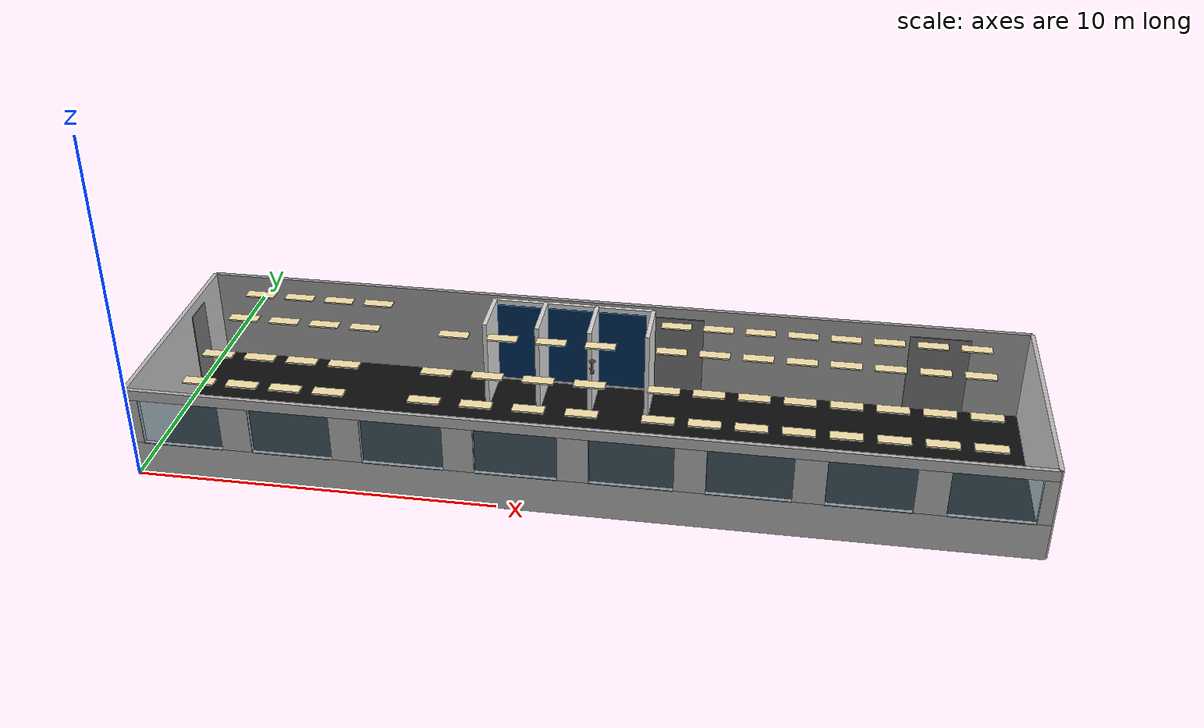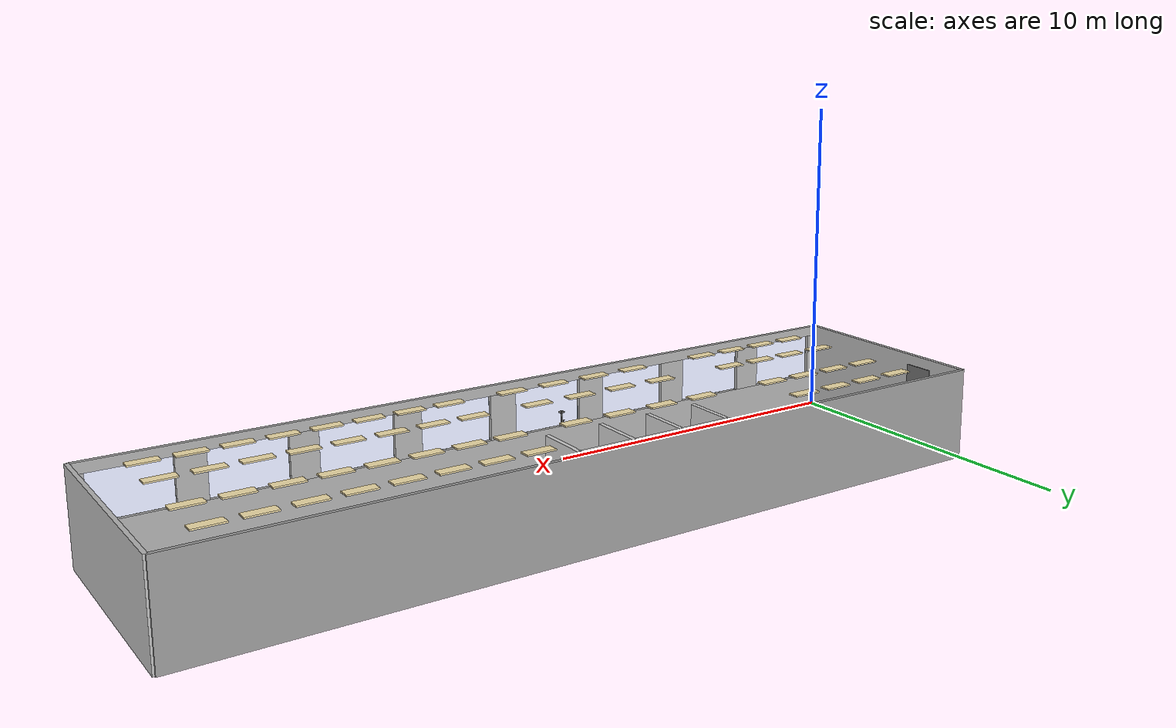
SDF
<?xml version="1.0" ?>
<sdf version="1.10">
  <world name="room_427_tracking_test">

    <plugin filename="gz-sim-physics-system" name="gz::sim::systems::Physics"/>
    <plugin filename="gz-sim-user-commands-system" name="gz::sim::systems::UserCommands"/>
    <plugin filename="gz-sim-scene-broadcaster-system" name="gz::sim::systems::SceneBroadcaster"/>
    <plugin filename="gz-sim-sensors-system" name="gz::sim::systems::Sensors">
      <render_engine>ogre2</render_engine>
    </plugin>

    <gravity>0 0 -9.8</gravity>

    <scene>
      <ambient>0.68 0.68 0.68 1</ambient>
      <background>0.82 0.86 0.9 1</background>
      <shadows>true</shadows>
      <grid>false</grid>
    </scene>

    <light name="main_light" type="directional">
      <pose>0 0 10 0 0 0</pose>
      <diffuse>1.0 1.0 0.95 1</diffuse>
      <specular>0.35 0.35 0.32 1</specular>
      <direction>-0.5 0.5 -1</direction>
    </light>

    <light name="room_427_fill_light_1" type="point">
      <pose>4.0 1.5 2.55 0 0 0</pose>
      <diffuse>0.85 0.82 0.72 1</diffuse>
      <specular>0.12 0.12 0.1 1</specular>
      <attenuation>
        <range>8.5</range>
        <constant>0.6</constant>
        <linear>0.08</linear>
        <quadratic>0.02</quadratic>
      </attenuation>
      <cast_shadows>false</cast_shadows>
    </light>

    <light name="room_427_fill_light_2" type="point">
      <pose>10.5 4.0 2.55 0 0 0</pose>
      <diffuse>0.85 0.82 0.72 1</diffuse>
      <specular>0.12 0.12 0.1 1</specular>
      <attenuation>
        <range>8.5</range>
        <constant>0.6</constant>
        <linear>0.08</linear>
        <quadratic>0.02</quadratic>
      </attenuation>
      <cast_shadows>false</cast_shadows>
    </light>

    <light name="room_427_fill_light_3" type="point">
      <pose>17.0 1.5 2.55 0 0 0</pose>
      <diffuse>0.85 0.82 0.72 1</diffuse>
      <specular>0.12 0.12 0.1 1</specular>
      <attenuation>
        <range>8.5</range>
        <constant>0.6</constant>
        <linear>0.08</linear>
        <quadratic>0.02</quadratic>
      </attenuation>
      <cast_shadows>false</cast_shadows>
    </light>

    <light name="room_427_fill_light_4" type="point">
      <pose>21.5 4.0 2.55 0 0 0</pose>
      <diffuse>0.85 0.82 0.72 1</diffuse>
      <specular>0.12 0.12 0.1 1</specular>
      <attenuation>
        <range>8.5</range>
        <constant>0.6</constant>
        <linear>0.08</linear>
        <quadratic>0.02</quadratic>
      </attenuation>
      <cast_shadows>false</cast_shadows>
    </light>

    <gui fullscreen="0">
      <camera name="user_camera">
        <pose>12 -10 8 0 0.7 1.15</pose>
      </camera>
    </gui>

    <!-- Floor: black, reflective -->
    <model name="room_427_floor">
      <static>true</static>
      <pose>12.1 3.27 0 0 0 0</pose>
      <link name="floor_link">
        <collision name="floor_collision">
          <geometry><box><size>24.2 6.54 0.03</size></box></geometry>
        </collision>
        <visual name="floor_visual">
          <geometry><box><size>24.2 6.54 0.03</size></box></geometry>
          <material>
            <ambient>0.01 0.01 0.01 1</ambient>
            <diffuse>0.055 0.055 0.052 1</diffuse>
            <specular>0.45 0.45 0.42 1</specular>
            <pbr>
              <metal>
                <metalness>0.0</metalness>
                <roughness>0.28</roughness>
              </metal>
            </pbr>
          </material>
        </visual>
      </link>
    </model>

    <model name="back_wall_D_C">
      <static>true</static>
      <pose>12.1 6.54 1.375 0 0 0</pose>
      <link name="link">
        <collision name="collision">
          <geometry><box><size>24.2 0.12 2.75</size></box></geometry>
        </collision>
        <visual name="visual">
          <geometry><box><size>24.2 0.12 2.75</size></box></geometry>
          <material>
            <ambient>0.62 0.62 0.62 1</ambient>
            <diffuse>0.62 0.62 0.62 1</diffuse>

          </material>

        </visual>
      </link>
    </model>

    <model name="wall_A_C_solid_no_door">
      <static>true</static>
      <pose>24.2 3.27 1.375 0 0 0</pose>
      <link name="link">
        <collision name="collision">
          <geometry><box><size>0.12 6.54 2.75</size></box></geometry>
        </collision>
        <visual name="visual">
          <geometry><box><size>0.12 6.54 2.75</size></box></geometry>
          <material>
            <ambient>0.75 0.75 0.75 1</ambient>
            <diffuse>0.75 0.75 0.75 1</diffuse>

          </material>

        </visual>
      </link>
    </model>
    <!-- B-D wall: solid wall; Door 3 is shown as a gray door panel near D -->
    <model name="B_D_wall_solid_with_door3_panel">
      <static>true</static>
      <pose>0 3.27 1.375 0 0 0</pose>
      <link name="wall_B_D_solid">
        <collision name="collision">
          <geometry><box><size>0.12 6.54 2.75</size></box></geometry>
        </collision>
        <visual name="visual">
          <geometry><box><size>0.12 6.54 2.75</size></box></geometry>
          <material>
            <ambient>0.75 0.75 0.75 1</ambient>
            <diffuse>0.75 0.75 0.75 1</diffuse>
          </material>
        </visual>
      </link>
      <link name="door_3_panel_near_D">
        <pose>0.065 1.5682 -0.16 0 0 0</pose>
        <visual name="visual">
          <geometry><box><size>0.04 0.9144 2.43</size></box></geometry>
          <material>
            <ambient>0.45 0.45 0.45 1</ambient>
            <diffuse>0.45 0.45 0.45 1</diffuse>
          </material>
        </visual>
      </link>
    </model>

    <model name="window_wall_lower_A_B">
      <static>true</static>
      <pose>12.1 0 0.545 0 0 0</pose>
      <link name="link">
        <collision name="collision">
          <geometry><box><size>24.2 0.12 1.09</size></box></geometry>
        </collision>
        <visual name="visual">
          <geometry><box><size>24.2 0.12 1.09</size></box></geometry>
          <material>
            <ambient>0.7 0.7 0.7 1</ambient>
            <diffuse>0.7 0.7 0.7 1</diffuse>

          </material>

        </visual>
      </link>
    </model>

    <model name="window_wall_top_A_B">
      <static>true</static>
      <pose>12.1 0 2.5925 0 0 0</pose>
      <link name="link">
        <collision name="collision">
          <geometry><box><size>24.2 0.12 0.305</size></box></geometry>
        </collision>
        <visual name="visual">
          <geometry><box><size>24.2 0.12 0.305</size></box></geometry>
          <material>
            <ambient>0.7 0.7 0.7 1</ambient>
            <diffuse>0.7 0.7 0.7 1</diffuse>

          </material>

        </visual>
      </link>
    </model>

    <model name="window_wall_vertical_pieces">
      <static>true</static>

      <link name="window_side_left">
        <pose>0.1725 0 1.765 0 0 0</pose>
        <collision name="collision">
          <geometry><box><size>0.345 0.12 1.35</size></box></geometry>
        </collision>
        <visual name="visual">
          <geometry><box><size>0.345 0.12 1.35</size></box></geometry>
          <material>
            <ambient>0.7 0.7 0.7 1</ambient>
            <diffuse>0.7 0.7 0.7 1</diffuse>

          </material>

        </visual>
      </link>

      <link name="window_gap_1">
        <pose>2.97 0 1.765 0 0 0</pose>
        <collision name="collision">
          <geometry><box><size>0.83 0.12 1.35</size></box></geometry>
        </collision>
        <visual name="visual">
          <geometry><box><size>0.83 0.12 1.35</size></box></geometry>
          <material>
            <ambient>0.7 0.7 0.7 1</ambient>
            <diffuse>0.7 0.7 0.7 1</diffuse>

          </material>

        </visual>
      </link>

      <link name="window_gap_2">
        <pose>6.01 0 1.765 0 0 0</pose>
        <collision name="collision">
          <geometry><box><size>0.83 0.12 1.35</size></box></geometry>
        </collision>
        <visual name="visual">
          <geometry><box><size>0.83 0.12 1.35</size></box></geometry>
          <material>
            <ambient>0.7 0.7 0.7 1</ambient>
            <diffuse>0.7 0.7 0.7 1</diffuse>

          </material>

        </visual>
      </link>

      <link name="window_gap_3">
        <pose>9.05 0 1.765 0 0 0</pose>
        <collision name="collision">
          <geometry><box><size>0.83 0.12 1.35</size></box></geometry>
        </collision>
        <visual name="visual">
          <geometry><box><size>0.83 0.12 1.35</size></box></geometry>
          <material>
            <ambient>0.7 0.7 0.7 1</ambient>
            <diffuse>0.7 0.7 0.7 1</diffuse>

          </material>

        </visual>
      </link>

      <link name="window_gap_4">
        <pose>12.09 0 1.765 0 0 0</pose>
        <collision name="collision">
          <geometry><box><size>0.83 0.12 1.35</size></box></geometry>
        </collision>
        <visual name="visual">
          <geometry><box><size>0.83 0.12 1.35</size></box></geometry>
          <material>
            <ambient>0.7 0.7 0.7 1</ambient>
            <diffuse>0.7 0.7 0.7 1</diffuse>

          </material>

        </visual>
      </link>

      <link name="window_gap_5">
        <pose>15.13 0 1.765 0 0 0</pose>
        <collision name="collision">
          <geometry><box><size>0.83 0.12 1.35</size></box></geometry>
        </collision>
        <visual name="visual">
          <geometry><box><size>0.83 0.12 1.35</size></box></geometry>
          <material>
            <ambient>0.7 0.7 0.7 1</ambient>
            <diffuse>0.7 0.7 0.7 1</diffuse>

          </material>

        </visual>
      </link>

      <link name="window_gap_6">
        <pose>18.17 0 1.765 0 0 0</pose>
        <collision name="collision">
          <geometry><box><size>0.83 0.12 1.35</size></box></geometry>
        </collision>
        <visual name="visual">
          <geometry><box><size>0.83 0.12 1.35</size></box></geometry>
          <material>
            <ambient>0.7 0.7 0.7 1</ambient>
            <diffuse>0.7 0.7 0.7 1</diffuse>

          </material>

        </visual>
      </link>

      <link name="window_gap_7">
        <pose>21.21 0 1.765 0 0 0</pose>
        <collision name="collision">
          <geometry><box><size>0.83 0.12 1.35</size></box></geometry>
        </collision>
        <visual name="visual">
          <geometry><box><size>0.83 0.12 1.35</size></box></geometry>
          <material>
            <ambient>0.7 0.7 0.7 1</ambient>
            <diffuse>0.7 0.7 0.7 1</diffuse>

          </material>

        </visual>
      </link>

      <link name="window_side_right">
        <pose>24.0175 0 1.765 0 0 0</pose>
        <collision name="collision">
          <geometry><box><size>0.365 0.12 1.35</size></box></geometry>
        </collision>
        <visual name="visual">
          <geometry><box><size>0.365 0.12 1.35</size></box></geometry>
          <material>
            <ambient>0.7 0.7 0.7 1</ambient>
            <diffuse>0.7 0.7 0.7 1</diffuse>

          </material>

        </visual>
      </link>
    </model>

    <model name="window_glass_panes">
      <static>true</static>

      <link name="window_1">
        <pose>1.45 -0.07 1.765 0 0 0</pose>
        <visual name="visual">
          <geometry><box><size>2.21 0.03 1.35</size></box></geometry>
          <material>
            <ambient>0.55 0.75 0.9 0.35</ambient>
            <diffuse>0.55 0.75 0.9 0.35</diffuse>
            <specular>0.8 0.8 0.8 1</specular>

          </material>
          <transparency>0.55</transparency>
        </visual>
      </link>

      <link name="window_2">
        <pose>4.49 -0.07 1.765 0 0 0</pose>
        <visual name="visual">
          <geometry><box><size>2.21 0.03 1.35</size></box></geometry>
          <material>
            <ambient>0.55 0.75 0.9 0.35</ambient>
            <diffuse>0.55 0.75 0.9 0.35</diffuse>
            <specular>0.8 0.8 0.8 1</specular>

          </material>
          <transparency>0.55</transparency>
        </visual>
      </link>

      <link name="window_3">
        <pose>7.53 -0.07 1.765 0 0 0</pose>
        <visual name="visual">
          <geometry><box><size>2.21 0.03 1.35</size></box></geometry>
          <material>
            <ambient>0.55 0.75 0.9 0.35</ambient>
            <diffuse>0.55 0.75 0.9 0.35</diffuse>
            <specular>0.8 0.8 0.8 1</specular>

          </material>
          <transparency>0.55</transparency>
        </visual>
      </link>

      <link name="window_4">
        <pose>10.57 -0.07 1.765 0 0 0</pose>
        <visual name="visual">
          <geometry><box><size>2.21 0.03 1.35</size></box></geometry>
          <material>
            <ambient>0.55 0.75 0.9 0.35</ambient>
            <diffuse>0.55 0.75 0.9 0.35</diffuse>
            <specular>0.8 0.8 0.8 1</specular>

          </material>
          <transparency>0.55</transparency>
        </visual>
      </link>

      <link name="window_5">
        <pose>13.61 -0.07 1.765 0 0 0</pose>
        <visual name="visual">
          <geometry><box><size>2.21 0.03 1.35</size></box></geometry>
          <material>
            <ambient>0.55 0.75 0.9 0.35</ambient>
            <diffuse>0.55 0.75 0.9 0.35</diffuse>
            <specular>0.8 0.8 0.8 1</specular>

          </material>
          <transparency>0.55</transparency>
        </visual>
      </link>

      <link name="window_6">
        <pose>16.65 -0.07 1.765 0 0 0</pose>
        <visual name="visual">
          <geometry><box><size>2.21 0.03 1.35</size></box></geometry>
          <material>
            <ambient>0.55 0.75 0.9 0.35</ambient>
            <diffuse>0.55 0.75 0.9 0.35</diffuse>
            <specular>0.8 0.8 0.8 1</specular>

          </material>
          <transparency>0.55</transparency>
        </visual>
      </link>

      <link name="window_7">
        <pose>19.69 -0.07 1.765 0 0 0</pose>
        <visual name="visual">
          <geometry><box><size>2.21 0.03 1.35</size></box></geometry>
          <material>
            <ambient>0.55 0.75 0.9 0.35</ambient>
            <diffuse>0.55 0.75 0.9 0.35</diffuse>
            <specular>0.8 0.8 0.8 1</specular>

          </material>
          <transparency>0.55</transparency>
        </visual>
      </link>

      <link name="window_8">
        <pose>22.73 -0.07 1.765 0 0 0</pose>
        <visual name="visual">
          <geometry><box><size>2.21 0.03 1.35</size></box></geometry>
          <material>
            <ambient>0.55 0.75 0.9 0.35</ambient>
            <diffuse>0.55 0.75 0.9 0.35</diffuse>
            <specular>0.8 0.8 0.8 1</specular>

          </material>
          <transparency>0.55</transparency>
        </visual>
      </link>
    </model>

    <model name="ceiling_lights_zone1">
      <static>true</static>

      <link name="ceiling_lights_zone1_r1_c1">
        <pose>1.8 0.75 2.70 0 0 0</pose>
        <visual name="visual">
          <geometry><box><size>0.85 0.32 0.04</size></box></geometry>
          <material>
            <ambient>1.0 0.92 0.7 1</ambient>
            <diffuse>1.0 0.92 0.7 1</diffuse>

            <emissive>1.0 0.92 0.7 1</emissive>

          </material>

        </visual>
      </link>

      <link name="ceiling_lights_zone1_r1_c2">
        <pose>1.8 2.15 2.70 0 0 0</pose>
        <visual name="visual">
          <geometry><box><size>0.85 0.32 0.04</size></box></geometry>
          <material>
            <ambient>1.0 0.92 0.7 1</ambient>
            <diffuse>1.0 0.92 0.7 1</diffuse>

            <emissive>1.0 0.92 0.7 1</emissive>

          </material>

        </visual>
      </link>

      <link name="ceiling_lights_zone1_r1_c3">
        <pose>1.8 4.15 2.70 0 0 0</pose>
        <visual name="visual">
          <geometry><box><size>0.85 0.32 0.04</size></box></geometry>
          <material>
            <ambient>1.0 0.92 0.7 1</ambient>
            <diffuse>1.0 0.92 0.7 1</diffuse>

            <emissive>1.0 0.92 0.7 1</emissive>

          </material>

        </visual>
      </link>

      <link name="ceiling_lights_zone1_r1_c4">
        <pose>1.8 5.55 2.70 0 0 0</pose>
        <visual name="visual">
          <geometry><box><size>0.85 0.32 0.04</size></box></geometry>
          <material>
            <ambient>1.0 0.92 0.7 1</ambient>
            <diffuse>1.0 0.92 0.7 1</diffuse>

            <emissive>1.0 0.92 0.7 1</emissive>

          </material>

        </visual>
      </link>

      <link name="ceiling_lights_zone1_r2_c1">
        <pose>3.0 0.75 2.70 0 0 0</pose>
        <visual name="visual">
          <geometry><box><size>0.85 0.32 0.04</size></box></geometry>
          <material>
            <ambient>1.0 0.92 0.7 1</ambient>
            <diffuse>1.0 0.92 0.7 1</diffuse>

            <emissive>1.0 0.92 0.7 1</emissive>

          </material>

        </visual>
      </link>

      <link name="ceiling_lights_zone1_r2_c2">
        <pose>3.0 2.15 2.70 0 0 0</pose>
        <visual name="visual">
          <geometry><box><size>0.85 0.32 0.04</size></box></geometry>
          <material>
            <ambient>1.0 0.92 0.7 1</ambient>
            <diffuse>1.0 0.92 0.7 1</diffuse>

            <emissive>1.0 0.92 0.7 1</emissive>

          </material>

        </visual>
      </link>

      <link name="ceiling_lights_zone1_r2_c3">
        <pose>3.0 4.15 2.70 0 0 0</pose>
        <visual name="visual">
          <geometry><box><size>0.85 0.32 0.04</size></box></geometry>
          <material>
            <ambient>1.0 0.92 0.7 1</ambient>
            <diffuse>1.0 0.92 0.7 1</diffuse>

            <emissive>1.0 0.92 0.7 1</emissive>

          </material>

        </visual>
      </link>

      <link name="ceiling_lights_zone1_r2_c4">
        <pose>3.0 5.55 2.70 0 0 0</pose>
        <visual name="visual">
          <geometry><box><size>0.85 0.32 0.04</size></box></geometry>
          <material>
            <ambient>1.0 0.92 0.7 1</ambient>
            <diffuse>1.0 0.92 0.7 1</diffuse>

            <emissive>1.0 0.92 0.7 1</emissive>

          </material>

        </visual>
      </link>

      <link name="ceiling_lights_zone1_r3_c1">
        <pose>4.2 0.75 2.70 0 0 0</pose>
        <visual name="visual">
          <geometry><box><size>0.85 0.32 0.04</size></box></geometry>
          <material>
            <ambient>1.0 0.92 0.7 1</ambient>
            <diffuse>1.0 0.92 0.7 1</diffuse>

            <emissive>1.0 0.92 0.7 1</emissive>

          </material>

        </visual>
      </link>

      <link name="ceiling_lights_zone1_r3_c2">
        <pose>4.2 2.15 2.70 0 0 0</pose>
        <visual name="visual">
          <geometry><box><size>0.85 0.32 0.04</size></box></geometry>
          <material>
            <ambient>1.0 0.92 0.7 1</ambient>
            <diffuse>1.0 0.92 0.7 1</diffuse>

            <emissive>1.0 0.92 0.7 1</emissive>

          </material>

        </visual>
      </link>

      <link name="ceiling_lights_zone1_r3_c3">
        <pose>4.2 4.15 2.70 0 0 0</pose>
        <visual name="visual">
          <geometry><box><size>0.85 0.32 0.04</size></box></geometry>
          <material>
            <ambient>1.0 0.92 0.7 1</ambient>
            <diffuse>1.0 0.92 0.7 1</diffuse>

            <emissive>1.0 0.92 0.7 1</emissive>

          </material>

        </visual>
      </link>

      <link name="ceiling_lights_zone1_r3_c4">
        <pose>4.2 5.55 2.70 0 0 0</pose>
        <visual name="visual">
          <geometry><box><size>0.85 0.32 0.04</size></box></geometry>
          <material>
            <ambient>1.0 0.92 0.7 1</ambient>
            <diffuse>1.0 0.92 0.7 1</diffuse>

            <emissive>1.0 0.92 0.7 1</emissive>

          </material>

        </visual>
      </link>

      <link name="ceiling_lights_zone1_r4_c1">
        <pose>5.4 0.75 2.70 0 0 0</pose>
        <visual name="visual">
          <geometry><box><size>0.85 0.32 0.04</size></box></geometry>
          <material>
            <ambient>1.0 0.92 0.7 1</ambient>
            <diffuse>1.0 0.92 0.7 1</diffuse>

            <emissive>1.0 0.92 0.7 1</emissive>

          </material>

        </visual>
      </link>

      <link name="ceiling_lights_zone1_r4_c2">
        <pose>5.4 2.15 2.70 0 0 0</pose>
        <visual name="visual">
          <geometry><box><size>0.85 0.32 0.04</size></box></geometry>
          <material>
            <ambient>1.0 0.92 0.7 1</ambient>
            <diffuse>1.0 0.92 0.7 1</diffuse>

            <emissive>1.0 0.92 0.7 1</emissive>

          </material>

        </visual>
      </link>

      <link name="ceiling_lights_zone1_r4_c3">
        <pose>5.4 4.15 2.70 0 0 0</pose>
        <visual name="visual">
          <geometry><box><size>0.85 0.32 0.04</size></box></geometry>
          <material>
            <ambient>1.0 0.92 0.7 1</ambient>
            <diffuse>1.0 0.92 0.7 1</diffuse>

            <emissive>1.0 0.92 0.7 1</emissive>

          </material>

        </visual>
      </link>

      <link name="ceiling_lights_zone1_r4_c4">
        <pose>5.4 5.55 2.70 0 0 0</pose>
        <visual name="visual">
          <geometry><box><size>0.85 0.32 0.04</size></box></geometry>
          <material>
            <ambient>1.0 0.92 0.7 1</ambient>
            <diffuse>1.0 0.92 0.7 1</diffuse>

            <emissive>1.0 0.92 0.7 1</emissive>

          </material>

        </visual>
      </link>
    </model>

    <model name="ceiling_lights_zone2">
      <static>true</static>

      <link name="ceiling_lights_zone2_r1_c1">
        <pose>8.0 0.75 2.70 0 0 0</pose>
        <visual name="visual">
          <geometry><box><size>0.85 0.32 0.04</size></box></geometry>
          <material>
            <ambient>1.0 0.92 0.7 1</ambient>
            <diffuse>1.0 0.92 0.7 1</diffuse>

            <emissive>1.0 0.92 0.7 1</emissive>

          </material>

        </visual>
      </link>

      <link name="ceiling_lights_zone2_r1_c2">
        <pose>8.0 2.15 2.70 0 0 0</pose>
        <visual name="visual">
          <geometry><box><size>0.85 0.32 0.04</size></box></geometry>
          <material>
            <ambient>1.0 0.92 0.7 1</ambient>
            <diffuse>1.0 0.92 0.7 1</diffuse>

            <emissive>1.0 0.92 0.7 1</emissive>

          </material>

        </visual>
      </link>

      <link name="ceiling_lights_zone2_r1_c3">
        <pose>8.0 4.15 2.70 0 0 0</pose>
        <visual name="visual">
          <geometry><box><size>0.85 0.32 0.04</size></box></geometry>
          <material>
            <ambient>1.0 0.92 0.7 1</ambient>
            <diffuse>1.0 0.92 0.7 1</diffuse>

            <emissive>1.0 0.92 0.7 1</emissive>

          </material>

        </visual>
      </link>

      <link name="ceiling_lights_zone2_r2_c1">
        <pose>9.4 0.75 2.70 0 0 0</pose>
        <visual name="visual">
          <geometry><box><size>0.85 0.32 0.04</size></box></geometry>
          <material>
            <ambient>1.0 0.92 0.7 1</ambient>
            <diffuse>1.0 0.92 0.7 1</diffuse>

            <emissive>1.0 0.92 0.7 1</emissive>

          </material>

        </visual>
      </link>

      <link name="ceiling_lights_zone2_r2_c2">
        <pose>9.4 2.15 2.70 0 0 0</pose>
        <visual name="visual">
          <geometry><box><size>0.85 0.32 0.04</size></box></geometry>
          <material>
            <ambient>1.0 0.92 0.7 1</ambient>
            <diffuse>1.0 0.92 0.7 1</diffuse>

            <emissive>1.0 0.92 0.7 1</emissive>

          </material>

        </visual>
      </link>

      <link name="ceiling_lights_zone2_r2_c3">
        <pose>9.4 4.15 2.70 0 0 0</pose>
        <visual name="visual">
          <geometry><box><size>0.85 0.32 0.04</size></box></geometry>
          <material>
            <ambient>1.0 0.92 0.7 1</ambient>
            <diffuse>1.0 0.92 0.7 1</diffuse>

            <emissive>1.0 0.92 0.7 1</emissive>

          </material>

        </visual>
      </link>

      <link name="ceiling_lights_zone2_r3_c1">
        <pose>10.8 0.75 2.70 0 0 0</pose>
        <visual name="visual">
          <geometry><box><size>0.85 0.32 0.04</size></box></geometry>
          <material>
            <ambient>1.0 0.92 0.7 1</ambient>
            <diffuse>1.0 0.92 0.7 1</diffuse>

            <emissive>1.0 0.92 0.7 1</emissive>

          </material>

        </visual>
      </link>

      <link name="ceiling_lights_zone2_r3_c2">
        <pose>10.8 2.15 2.70 0 0 0</pose>
        <visual name="visual">
          <geometry><box><size>0.85 0.32 0.04</size></box></geometry>
          <material>
            <ambient>1.0 0.92 0.7 1</ambient>
            <diffuse>1.0 0.92 0.7 1</diffuse>

            <emissive>1.0 0.92 0.7 1</emissive>

          </material>

        </visual>
      </link>

      <link name="ceiling_lights_zone2_r3_c3">
        <pose>10.8 4.15 2.70 0 0 0</pose>
        <visual name="visual">
          <geometry><box><size>0.85 0.32 0.04</size></box></geometry>
          <material>
            <ambient>1.0 0.92 0.7 1</ambient>
            <diffuse>1.0 0.92 0.7 1</diffuse>

            <emissive>1.0 0.92 0.7 1</emissive>

          </material>

        </visual>
      </link>

      <link name="ceiling_lights_zone2_r4_c1">
        <pose>12.2 0.75 2.70 0 0 0</pose>
        <visual name="visual">
          <geometry><box><size>0.85 0.32 0.04</size></box></geometry>
          <material>
            <ambient>1.0 0.92 0.7 1</ambient>
            <diffuse>1.0 0.92 0.7 1</diffuse>

            <emissive>1.0 0.92 0.7 1</emissive>

          </material>

        </visual>
      </link>

      <link name="ceiling_lights_zone2_r4_c2">
        <pose>12.2 2.15 2.70 0 0 0</pose>
        <visual name="visual">
          <geometry><box><size>0.85 0.32 0.04</size></box></geometry>
          <material>
            <ambient>1.0 0.92 0.7 1</ambient>
            <diffuse>1.0 0.92 0.7 1</diffuse>

            <emissive>1.0 0.92 0.7 1</emissive>

          </material>

        </visual>
      </link>

      <link name="ceiling_lights_zone2_r4_c3">
        <pose>12.2 4.15 2.70 0 0 0</pose>
        <visual name="visual">
          <geometry><box><size>0.85 0.32 0.04</size></box></geometry>
          <material>
            <ambient>1.0 0.92 0.7 1</ambient>
            <diffuse>1.0 0.92 0.7 1</diffuse>

            <emissive>1.0 0.92 0.7 1</emissive>

          </material>

        </visual>
      </link>
    </model>

    <model name="ceiling_lights_zone3">
      <static>true</static>

      <link name="ceiling_lights_zone3_r1_c1">
        <pose>14.2 0.75 2.70 0 0 0</pose>
        <visual name="visual">
          <geometry><box><size>0.85 0.32 0.04</size></box></geometry>
          <material>
            <ambient>1.0 0.92 0.7 1</ambient>
            <diffuse>1.0 0.92 0.7 1</diffuse>

            <emissive>1.0 0.92 0.7 1</emissive>

          </material>

        </visual>
      </link>

      <link name="ceiling_lights_zone3_r1_c2">
        <pose>14.2 2.15 2.70 0 0 0</pose>
        <visual name="visual">
          <geometry><box><size>0.85 0.32 0.04</size></box></geometry>
          <material>
            <ambient>1.0 0.92 0.7 1</ambient>
            <diffuse>1.0 0.92 0.7 1</diffuse>

            <emissive>1.0 0.92 0.7 1</emissive>

          </material>

        </visual>
      </link>

      <link name="ceiling_lights_zone3_r1_c3">
        <pose>14.2 4.15 2.70 0 0 0</pose>
        <visual name="visual">
          <geometry><box><size>0.85 0.32 0.04</size></box></geometry>
          <material>
            <ambient>1.0 0.92 0.7 1</ambient>
            <diffuse>1.0 0.92 0.7 1</diffuse>

            <emissive>1.0 0.92 0.7 1</emissive>

          </material>

        </visual>
      </link>

      <link name="ceiling_lights_zone3_r1_c4">
        <pose>14.2 5.55 2.70 0 0 0</pose>
        <visual name="visual">
          <geometry><box><size>0.85 0.32 0.04</size></box></geometry>
          <material>
            <ambient>1.0 0.92 0.7 1</ambient>
            <diffuse>1.0 0.92 0.7 1</diffuse>

            <emissive>1.0 0.92 0.7 1</emissive>

          </material>

        </visual>
      </link>

      <link name="ceiling_lights_zone3_r2_c1">
        <pose>15.4 0.75 2.70 0 0 0</pose>
        <visual name="visual">
          <geometry><box><size>0.85 0.32 0.04</size></box></geometry>
          <material>
            <ambient>1.0 0.92 0.7 1</ambient>
            <diffuse>1.0 0.92 0.7 1</diffuse>

            <emissive>1.0 0.92 0.7 1</emissive>

          </material>

        </visual>
      </link>

      <link name="ceiling_lights_zone3_r2_c2">
        <pose>15.4 2.15 2.70 0 0 0</pose>
        <visual name="visual">
          <geometry><box><size>0.85 0.32 0.04</size></box></geometry>
          <material>
            <ambient>1.0 0.92 0.7 1</ambient>
            <diffuse>1.0 0.92 0.7 1</diffuse>

            <emissive>1.0 0.92 0.7 1</emissive>

          </material>

        </visual>
      </link>

      <link name="ceiling_lights_zone3_r2_c3">
        <pose>15.4 4.15 2.70 0 0 0</pose>
        <visual name="visual">
          <geometry><box><size>0.85 0.32 0.04</size></box></geometry>
          <material>
            <ambient>1.0 0.92 0.7 1</ambient>
            <diffuse>1.0 0.92 0.7 1</diffuse>

            <emissive>1.0 0.92 0.7 1</emissive>

          </material>

        </visual>
      </link>

      <link name="ceiling_lights_zone3_r2_c4">
        <pose>15.4 5.55 2.70 0 0 0</pose>
        <visual name="visual">
          <geometry><box><size>0.85 0.32 0.04</size></box></geometry>
          <material>
            <ambient>1.0 0.92 0.7 1</ambient>
            <diffuse>1.0 0.92 0.7 1</diffuse>

            <emissive>1.0 0.92 0.7 1</emissive>

          </material>

        </visual>
      </link>

      <link name="ceiling_lights_zone3_r3_c1">
        <pose>16.6 0.75 2.70 0 0 0</pose>
        <visual name="visual">
          <geometry><box><size>0.85 0.32 0.04</size></box></geometry>
          <material>
            <ambient>1.0 0.92 0.7 1</ambient>
            <diffuse>1.0 0.92 0.7 1</diffuse>

            <emissive>1.0 0.92 0.7 1</emissive>

          </material>

        </visual>
      </link>

      <link name="ceiling_lights_zone3_r3_c2">
        <pose>16.6 2.15 2.70 0 0 0</pose>
        <visual name="visual">
          <geometry><box><size>0.85 0.32 0.04</size></box></geometry>
          <material>
            <ambient>1.0 0.92 0.7 1</ambient>
            <diffuse>1.0 0.92 0.7 1</diffuse>

            <emissive>1.0 0.92 0.7 1</emissive>

          </material>

        </visual>
      </link>

      <link name="ceiling_lights_zone3_r3_c3">
        <pose>16.6 4.15 2.70 0 0 0</pose>
        <visual name="visual">
          <geometry><box><size>0.85 0.32 0.04</size></box></geometry>
          <material>
            <ambient>1.0 0.92 0.7 1</ambient>
            <diffuse>1.0 0.92 0.7 1</diffuse>

            <emissive>1.0 0.92 0.7 1</emissive>

          </material>

        </visual>
      </link>

      <link name="ceiling_lights_zone3_r3_c4">
        <pose>16.6 5.55 2.70 0 0 0</pose>
        <visual name="visual">
          <geometry><box><size>0.85 0.32 0.04</size></box></geometry>
          <material>
            <ambient>1.0 0.92 0.7 1</ambient>
            <diffuse>1.0 0.92 0.7 1</diffuse>

            <emissive>1.0 0.92 0.7 1</emissive>

          </material>

        </visual>
      </link>

      <link name="ceiling_lights_zone3_r4_c1">
        <pose>17.8 0.75 2.70 0 0 0</pose>
        <visual name="visual">
          <geometry><box><size>0.85 0.32 0.04</size></box></geometry>
          <material>
            <ambient>1.0 0.92 0.7 1</ambient>
            <diffuse>1.0 0.92 0.7 1</diffuse>

            <emissive>1.0 0.92 0.7 1</emissive>

          </material>

        </visual>
      </link>

      <link name="ceiling_lights_zone3_r4_c2">
        <pose>17.8 2.15 2.70 0 0 0</pose>
        <visual name="visual">
          <geometry><box><size>0.85 0.32 0.04</size></box></geometry>
          <material>
            <ambient>1.0 0.92 0.7 1</ambient>
            <diffuse>1.0 0.92 0.7 1</diffuse>

            <emissive>1.0 0.92 0.7 1</emissive>

          </material>

        </visual>
      </link>

      <link name="ceiling_lights_zone3_r4_c3">
        <pose>17.8 4.15 2.70 0 0 0</pose>
        <visual name="visual">
          <geometry><box><size>0.85 0.32 0.04</size></box></geometry>
          <material>
            <ambient>1.0 0.92 0.7 1</ambient>
            <diffuse>1.0 0.92 0.7 1</diffuse>

            <emissive>1.0 0.92 0.7 1</emissive>

          </material>

        </visual>
      </link>

      <link name="ceiling_lights_zone3_r4_c4">
        <pose>17.8 5.55 2.70 0 0 0</pose>
        <visual name="visual">
          <geometry><box><size>0.85 0.32 0.04</size></box></geometry>
          <material>
            <ambient>1.0 0.92 0.7 1</ambient>
            <diffuse>1.0 0.92 0.7 1</diffuse>

            <emissive>1.0 0.92 0.7 1</emissive>

          </material>

        </visual>
      </link>

      <link name="ceiling_lights_zone3_r5_c1">
        <pose>19.0 0.75 2.70 0 0 0</pose>
        <visual name="visual">
          <geometry><box><size>0.85 0.32 0.04</size></box></geometry>
          <material>
            <ambient>1.0 0.92 0.7 1</ambient>
            <diffuse>1.0 0.92 0.7 1</diffuse>

            <emissive>1.0 0.92 0.7 1</emissive>

          </material>

        </visual>
      </link>

      <link name="ceiling_lights_zone3_r5_c2">
        <pose>19.0 2.15 2.70 0 0 0</pose>
        <visual name="visual">
          <geometry><box><size>0.85 0.32 0.04</size></box></geometry>
          <material>
            <ambient>1.0 0.92 0.7 1</ambient>
            <diffuse>1.0 0.92 0.7 1</diffuse>

            <emissive>1.0 0.92 0.7 1</emissive>

          </material>

        </visual>
      </link>

      <link name="ceiling_lights_zone3_r5_c3">
        <pose>19.0 4.15 2.70 0 0 0</pose>
        <visual name="visual">
          <geometry><box><size>0.85 0.32 0.04</size></box></geometry>
          <material>
            <ambient>1.0 0.92 0.7 1</ambient>
            <diffuse>1.0 0.92 0.7 1</diffuse>

            <emissive>1.0 0.92 0.7 1</emissive>

          </material>

        </visual>
      </link>

      <link name="ceiling_lights_zone3_r5_c4">
        <pose>19.0 5.55 2.70 0 0 0</pose>
        <visual name="visual">
          <geometry><box><size>0.85 0.32 0.04</size></box></geometry>
          <material>
            <ambient>1.0 0.92 0.7 1</ambient>
            <diffuse>1.0 0.92 0.7 1</diffuse>

            <emissive>1.0 0.92 0.7 1</emissive>

          </material>

        </visual>
      </link>

      <link name="ceiling_lights_zone3_r6_c1">
        <pose>20.2 0.75 2.70 0 0 0</pose>
        <visual name="visual">
          <geometry><box><size>0.85 0.32 0.04</size></box></geometry>
          <material>
            <ambient>1.0 0.92 0.7 1</ambient>
            <diffuse>1.0 0.92 0.7 1</diffuse>

            <emissive>1.0 0.92 0.7 1</emissive>

          </material>

        </visual>
      </link>

      <link name="ceiling_lights_zone3_r6_c2">
        <pose>20.2 2.15 2.70 0 0 0</pose>
        <visual name="visual">
          <geometry><box><size>0.85 0.32 0.04</size></box></geometry>
          <material>
            <ambient>1.0 0.92 0.7 1</ambient>
            <diffuse>1.0 0.92 0.7 1</diffuse>

            <emissive>1.0 0.92 0.7 1</emissive>

          </material>

        </visual>
      </link>

      <link name="ceiling_lights_zone3_r6_c3">
        <pose>20.2 4.15 2.70 0 0 0</pose>
        <visual name="visual">
          <geometry><box><size>0.85 0.32 0.04</size></box></geometry>
          <material>
            <ambient>1.0 0.92 0.7 1</ambient>
            <diffuse>1.0 0.92 0.7 1</diffuse>

            <emissive>1.0 0.92 0.7 1</emissive>

          </material>

        </visual>
      </link>

      <link name="ceiling_lights_zone3_r6_c4">
        <pose>20.2 5.55 2.70 0 0 0</pose>
        <visual name="visual">
          <geometry><box><size>0.85 0.32 0.04</size></box></geometry>
          <material>
            <ambient>1.0 0.92 0.7 1</ambient>
            <diffuse>1.0 0.92 0.7 1</diffuse>

            <emissive>1.0 0.92 0.7 1</emissive>

          </material>

        </visual>
      </link>

      <link name="ceiling_lights_zone3_r7_c1">
        <pose>21.4 0.75 2.70 0 0 0</pose>
        <visual name="visual">
          <geometry><box><size>0.85 0.32 0.04</size></box></geometry>
          <material>
            <ambient>1.0 0.92 0.7 1</ambient>
            <diffuse>1.0 0.92 0.7 1</diffuse>

            <emissive>1.0 0.92 0.7 1</emissive>

          </material>

        </visual>
      </link>

      <link name="ceiling_lights_zone3_r7_c2">
        <pose>21.4 2.15 2.70 0 0 0</pose>
        <visual name="visual">
          <geometry><box><size>0.85 0.32 0.04</size></box></geometry>
          <material>
            <ambient>1.0 0.92 0.7 1</ambient>
            <diffuse>1.0 0.92 0.7 1</diffuse>

            <emissive>1.0 0.92 0.7 1</emissive>

          </material>

        </visual>
      </link>

      <link name="ceiling_lights_zone3_r7_c3">
        <pose>21.4 4.15 2.70 0 0 0</pose>
        <visual name="visual">
          <geometry><box><size>0.85 0.32 0.04</size></box></geometry>
          <material>
            <ambient>1.0 0.92 0.7 1</ambient>
            <diffuse>1.0 0.92 0.7 1</diffuse>

            <emissive>1.0 0.92 0.7 1</emissive>

          </material>

        </visual>
      </link>

      <link name="ceiling_lights_zone3_r7_c4">
        <pose>21.4 5.55 2.70 0 0 0</pose>
        <visual name="visual">
          <geometry><box><size>0.85 0.32 0.04</size></box></geometry>
          <material>
            <ambient>1.0 0.92 0.7 1</ambient>
            <diffuse>1.0 0.92 0.7 1</diffuse>

            <emissive>1.0 0.92 0.7 1</emissive>

          </material>

        </visual>
      </link>

      <link name="ceiling_lights_zone3_r8_c1">
        <pose>22.6 0.75 2.70 0 0 0</pose>
        <visual name="visual">
          <geometry><box><size>0.85 0.32 0.04</size></box></geometry>
          <material>
            <ambient>1.0 0.92 0.7 1</ambient>
            <diffuse>1.0 0.92 0.7 1</diffuse>

            <emissive>1.0 0.92 0.7 1</emissive>

          </material>

        </visual>
      </link>

      <link name="ceiling_lights_zone3_r8_c2">
        <pose>22.6 2.15 2.70 0 0 0</pose>
        <visual name="visual">
          <geometry><box><size>0.85 0.32 0.04</size></box></geometry>
          <material>
            <ambient>1.0 0.92 0.7 1</ambient>
            <diffuse>1.0 0.92 0.7 1</diffuse>

            <emissive>1.0 0.92 0.7 1</emissive>

          </material>

        </visual>
      </link>

      <link name="ceiling_lights_zone3_r8_c3">
        <pose>22.6 4.15 2.70 0 0 0</pose>
        <visual name="visual">
          <geometry><box><size>0.85 0.32 0.04</size></box></geometry>
          <material>
            <ambient>1.0 0.92 0.7 1</ambient>
            <diffuse>1.0 0.92 0.7 1</diffuse>

            <emissive>1.0 0.92 0.7 1</emissive>

          </material>

        </visual>
      </link>

      <link name="ceiling_lights_zone3_r8_c4">
        <pose>22.6 5.55 2.70 0 0 0</pose>
        <visual name="visual">
          <geometry><box><size>0.85 0.32 0.04</size></box></geometry>
          <material>
            <ambient>1.0 0.92 0.7 1</ambient>
            <diffuse>1.0 0.92 0.7 1</diffuse>

            <emissive>1.0 0.92 0.7 1</emissive>

          </material>

        </visual>
      </link>
    </model>

    <model name="doors_and_connected_boxes_on_D_C_wall">
      <static>true</static>

      <link name="door_1_panel_D_C_wall">
        <pose>21.7 6.47 1.215 0 0 0</pose>
        <visual name="visual">
          <geometry><box><size>1.72 0.04 2.43</size></box></geometry>
          <material>
            <ambient>0.45 0.45 0.45 1</ambient>
            <diffuse>0.45 0.45 0.45 1</diffuse>

          </material>

        </visual>
      </link>

      <link name="door_2_panel_D_C_wall">
        <pose>14.0 6.47 1.215 0 0 0</pose>
        <visual name="visual">
          <geometry><box><size>1.83 0.04 2.43</size></box></geometry>
          <material>
            <ambient>0.45 0.45 0.45 1</ambient>
            <diffuse>0.45 0.45 0.45 1</diffuse>

          </material>

        </visual>
      </link>

      <link name="boxes_back_wall">
        <pose>11.1 6.27 1.375 0 0 0</pose>
        <collision name="collision">
          <geometry><box><size>4.699 0.12 2.75</size></box></geometry>
        </collision>
        <visual name="visual">
          <geometry><box><size>4.699 0.12 2.75</size></box></geometry>
          <material>
            <ambient>0.85 0.85 0.85 1</ambient>
            <diffuse>0.85 0.85 0.85 1</diffuse>

          </material>

        </visual>
      </link>

      <link name="boxes_left_side">
        <pose>8.75 5.50 1.375 0 0 0</pose>
        <collision name="collision">
          <geometry><box><size>0.127 1.549 2.75</size></box></geometry>
        </collision>
        <visual name="visual">
          <geometry><box><size>0.127 1.549 2.75</size></box></geometry>
          <material>
            <ambient>0.85 0.85 0.85 1</ambient>
            <diffuse>0.85 0.85 0.85 1</diffuse>

          </material>

        </visual>
      </link>

      <link name="boxes_divider_1">
        <pose>10.27 5.50 1.375 0 0 0</pose>
        <collision name="collision">
          <geometry><box><size>0.127 1.549 2.75</size></box></geometry>
        </collision>
        <visual name="visual">
          <geometry><box><size>0.127 1.549 2.75</size></box></geometry>
          <material>
            <ambient>0.85 0.85 0.85 1</ambient>
            <diffuse>0.85 0.85 0.85 1</diffuse>

          </material>

        </visual>
      </link>

      <link name="boxes_divider_2">
        <pose>11.79 5.50 1.375 0 0 0</pose>
        <collision name="collision">
          <geometry><box><size>0.127 1.549 2.75</size></box></geometry>
        </collision>
        <visual name="visual">
          <geometry><box><size>0.127 1.549 2.75</size></box></geometry>
          <material>
            <ambient>0.85 0.85 0.85 1</ambient>
            <diffuse>0.85 0.85 0.85 1</diffuse>

          </material>

        </visual>
      </link>

      <link name="boxes_right_side">
        <pose>13.45 5.50 1.375 0 0 0</pose>
        <collision name="collision">
          <geometry><box><size>0.127 1.549 2.75</size></box></geometry>
        </collision>
        <visual name="visual">
          <geometry><box><size>0.127 1.549 2.75</size></box></geometry>
          <material>
            <ambient>0.85 0.85 0.85 1</ambient>
            <diffuse>0.85 0.85 0.85 1</diffuse>

          </material>

        </visual>
      </link>

      <link name="box_1_blue_panel">
        <pose>9.51 6.20 1.35 0 0 0</pose>
        <visual name="visual">
          <geometry><box><size>1.397 0.03 2.50</size></box></geometry>
          <material>
            <ambient>0.0 0.16 0.35 1</ambient>
            <diffuse>0.0 0.16 0.35 1</diffuse>

          </material>

        </visual>
      </link>

      <link name="box_2_blue_panel">
        <pose>11.03 6.20 1.35 0 0 0</pose>
        <visual name="visual">
          <geometry><box><size>1.397 0.03 2.50</size></box></geometry>
          <material>
            <ambient>0.0 0.16 0.35 1</ambient>
            <diffuse>0.0 0.16 0.35 1</diffuse>

          </material>

        </visual>
      </link>

      <link name="box_3_blue_panel">
        <pose>12.55 6.20 1.35 0 0 0</pose>
        <visual name="visual">
          <geometry><box><size>1.397 0.03 2.50</size></box></geometry>
          <material>
            <ambient>0.0 0.16 0.35 1</ambient>
            <diffuse>0.0 0.16 0.35 1</diffuse>

          </material>

        </visual>
      </link>
    </model>

    <model name="pantilt_ceiling_mount">
      <static>true</static>
      <pose>12.1 3.27 0 0 0 0</pose>
      <link name="mount_link">
        <collision name="ceiling_rod_collision">
          <pose>0 0 2.58 0 0 0</pose>
          <geometry>
            <cylinder><radius>0.025</radius><length>0.34</length></cylinder>
          </geometry>
        </collision>
        <visual name="ceiling_rod_visual">
          <pose>0 0 2.58 0 0 0</pose>
          <geometry>
            <cylinder><radius>0.025</radius><length>0.34</length></cylinder>
          </geometry>
          <material>
            <ambient>0.34 0.34 0.34 1</ambient>
            <diffuse>0.42 0.42 0.42 1</diffuse>
            <specular>0.2 0.2 0.2 1</specular>
          </material>
        </visual>
        <visual name="ceiling_plate_visual">
          <pose>0 0 2.735 0 0 0</pose>
          <geometry>
            <cylinder><radius>0.09</radius><length>0.015</length></cylinder>
          </geometry>
          <material>
            <ambient>0.34 0.34 0.34 1</ambient>
            <diffuse>0.42 0.42 0.42 1</diffuse>
            <specular>0.2 0.2 0.2 1</specular>
          </material>
        </visual>
      </link>
    </model>

    <include>
      <name>pantilt</name>
      <uri>model://pantilt</uri>
      <!-- Ceiling-center smart classroom camera. The 180-degree world yaw gives
           the original pan joint room to move left and right from zero. -->
      <pose>12.1 3.27 2.35 0 0 3.14159</pose>
    </include>

  </world>
</sdf>

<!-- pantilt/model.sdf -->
<sdf version="1.10">
  <model name="pantilt">

    <pose>0 0 0 0 0 0</pose>
    <static>false</static>

    <link name="base_link">
      <gravity>false</gravity>
      <inertial>
        <mass>250.0</mass>
        <inertia>
          <ixx>12.0</ixx><ixy>0</ixy><ixz>0</ixz>
          <iyy>12.0</iyy><iyz>0</iyz>
          <izz>12.0</izz>
        </inertia>
      </inertial>

      <!-- Base: 100 x 100 x 63 mm, center at (0, 0, 31.5 mm) -->
      <visual name="base_visual">
        <pose>0 0 0.0315 0 0 0</pose>
        <geometry>
          <box><size>0.100 0.100 0.063</size></box>
        </geometry>
        <material>
          <!-- Glossy black -->
          <ambient>0.02 0.02 0.02 1</ambient>
          <diffuse>0.02 0.02 0.02 1</diffuse>
          <specular>0.8 0.8 0.8 1</specular>
        </material>
      </visual>
      <collision name="base_collision">
        <pose>0 0 0.0315 0 0 0</pose>
        <geometry>
          <box><size>0.100 0.100 0.063</size></box>
        </geometry>
      </collision>

      <!-- Pan servo body: 50(X) x 36(Y) x 35(Z) mm
           Front face flush with base front at X=+50mm → center at X=+25mm
           Sits on top of base: Z center = 63 + 35/2 = 80.5 mm -->
      <visual name="pan_servo_visual">
        <pose>0.025 0 0.0805 0 0 0</pose>
        <geometry>
          <box><size>0.050 0.036 0.035</size></box>
        </geometry>
        <material>
          <!-- Matte black -->
          <ambient>0.05 0.05 0.05 1</ambient>
          <diffuse>0.05 0.05 0.05 1</diffuse>
          <specular>0.08 0.08 0.08 1</specular>
        </material>
      </visual>
      <collision name="pan_servo_collision">
        <pose>0.025 0 0.0805 0 0 0</pose>
        <geometry>
          <box><size>0.050 0.036 0.035</size></box>
        </geometry>
      </collision>
    </link>

    <joint name="pan_joint" type="revolute">
      <pose relative_to="base_link">0.035 0 0.098 0 0 0</pose>
      <parent>base_link</parent>
      <child>pan_link</child>
      <axis>
        <xyz>0 0 1</xyz>
        <limit>
          <lower>-0.87266</lower>
          <upper>0.87266</upper>
        </limit>
        <dynamics>
          <damping>0.8</damping>
          <friction>0.15</friction>
        </dynamics>
      </axis>
    </joint>

    <link name="pan_link">
      <pose relative_to="pan_joint">0 0 0 0 0 0</pose>
      <gravity>false</gravity>
      <inertial>
        <mass>0.07</mass>
        <inertia>
          <ixx>0.000020</ixx><ixy>0</ixy><ixz>0</ixz>
          <iyy>0.000020</iyy><iyz>0</iyz>
          <izz>0.000012</izz>
        </inertia>
      </inertial>

      <!-- Washer stack: 3 x Ø40mm x 1.5mm = 4.5mm total height
           Modeled as one cylinder sitting directly on the pan horn (Z=0 in link frame).
           Center at Z = +2.25mm -->
      <visual name="washer_visual">
        <pose>0 0 0.00225 0 0 0</pose>
        <geometry>
          <cylinder>
            <radius>0.020</radius>
            <length>0.0045</length>
          </cylinder>
        </geometry>
        <material>
          <!-- Metallic silver -->
          <ambient>0.4 0.4 0.4 1</ambient>
          <diffuse>0.5 0.5 0.5 1</diffuse>
          <specular>0.7 0.7 0.7 1</specular>
        </material>
      </visual>
      <collision name="washer_collision">
        <pose>0 0 0.00225 0 0 0</pose>
        <geometry>
          <cylinder>
            <radius>0.020</radius>
            <length>0.0045</length>
          </cylinder>
        </geometry>
      </collision>

      <!-- Mount bracket: 35(X) x 36(Y) x 5(Z) mm
           Sits on washer stack top (Z=+4.5mm). Center at Z = 4.5 + 2.5 = 7.0mm -->
      <visual name="mount_bracket_visual">
        <pose>0 0 0.0070 0 0 0</pose>
        <geometry>
          <box><size>0.035 0.036 0.005</size></box>
        </geometry>
        <material>
          <!-- Matte black -->
          <ambient>0.05 0.05 0.05 1</ambient>
          <diffuse>0.05 0.05 0.05 1</diffuse>
          <specular>0.08 0.08 0.08 1</specular>
        </material>
      </visual>
      <collision name="mount_bracket_collision">
        <pose>0 0 0.0070 0 0 0</pose>
        <geometry>
          <box><size>0.035 0.036 0.005</size></box>
        </geometry>
      </collision>

      <!-- Tilt servo body: 35(X) x 36(Y) x 50(Z) mm
           Sits on bracket top (Z=+9.5mm). Center at Z = 9.5 + 25 = 34.5mm -->
      <visual name="tilt_servo_visual">
        <pose>0 0 0.0345 0 0 0</pose>
        <geometry>
          <box><size>0.035 0.036 0.050</size></box>
        </geometry>
        <material>
          <!-- Matte black -->
          <ambient>0.05 0.05 0.05 1</ambient>
          <diffuse>0.05 0.05 0.05 1</diffuse>
          <specular>0.08 0.08 0.08 1</specular>
        </material>
      </visual>
      <collision name="tilt_servo_collision">
        <pose>0 0 0.0345 0 0 0</pose>
        <geometry>
          <box><size>0.035 0.036 0.050</size></box>
        </geometry>
      </collision>
    </link>

    <joint name="tilt_joint" type="revolute">
      <pose relative_to="pan_link">0 0 0.0445 0 0 0</pose>
      <parent>pan_link</parent>
      <child>tilt_link</child>
      <axis>
        <xyz>0 1 0</xyz>
        <limit>
          <lower>0</lower>
          <upper>0.785398</upper>
        </limit>
        <dynamics>
          <damping>2.5</damping>
          <friction>0.25</friction>
        </dynamics>
      </axis>
    </joint>

    <link name="tilt_link">
      <pose relative_to="tilt_joint">0 0 0 0 0 0</pose>
      <gravity>false</gravity>
      <inertial>
        <mass>0.20</mass>
        <inertia>
          <ixx>0.00012</ixx><ixy>0</ixy><ixz>0</ixz>
          <iyy>0.00012</iyy><iyz>0</iyz>
          <izz>0.00012</izz>
        </inertia>
      </inertial>

      <visual name="u_bracket_arm_left_visual">
        <pose>0.015 0.019 0 0 0 0</pose>
        <geometry>
          <box><size>0.030 0.002 0.010</size></box>
        </geometry>
        <material>
          <!-- Gray bracket -->
          <ambient>0.35 0.35 0.35 1</ambient>
          <diffuse>0.35 0.35 0.35 1</diffuse>
          <specular>0.25 0.25 0.25 1</specular>
        </material>
      </visual>
      <collision name="u_bracket_arm_left_collision">
        <pose>0.015 0.019 0 0 0 0</pose>
        <geometry>
          <box><size>0.030 0.002 0.010</size></box>
        </geometry>
      </collision>

      <!-- U-bracket right arm (-Y side, flush with tilt servo right face at Y=-18mm) -->
      <visual name="u_bracket_arm_right_visual">
        <pose>0.015 -0.019 0 0 0 0</pose>
        <geometry>
          <box><size>0.030 0.002 0.010</size></box>
        </geometry>
        <material>
          <ambient>0.35 0.35 0.35 1</ambient>
          <diffuse>0.35 0.35 0.35 1</diffuse>
          <specular>0.25 0.25 0.25 1</specular>
        </material>
      </visual>
      <collision name="u_bracket_arm_right_collision">
        <pose>0.015 -0.019 0 0 0 0</pose>
        <geometry>
          <box><size>0.030 0.002 0.010</size></box>
        </geometry>
      </collision>

      <visual name="u_bracket_cross_visual">
        <pose>0.031 0 0 0 0 0</pose>
        <geometry>
          <box><size>0.002 0.040 0.010</size></box>
        </geometry>
        <material>
          <ambient>0.35 0.35 0.35 1</ambient>
          <diffuse>0.35 0.35 0.35 1</diffuse>
          <specular>0.25 0.25 0.25 1</specular>
        </material>
      </visual>
      <collision name="u_bracket_cross_collision">
        <pose>0.031 0 0 0 0 0</pose>
        <geometry>
          <box><size>0.002 0.040 0.010</size></box>
        </geometry>
      </collision>

      <!-- Camera body: 10mm(X depth) x 30mm(Y width) x 20mm(Z height)
           Mounted on front face of crosspiece.
           Back face at X = crosspiece_front = 32mm; center at X = 32 + 5 = 37mm -->
      <visual name="camera_body_visual">
        <pose>0.037 0 0 0 0 0</pose>
        <geometry>
          <box><size>0.010 0.030 0.020</size></box>
        </geometry>
        <material>
          <!-- Dark gray camera -->
          <ambient>0.12 0.12 0.12 1</ambient>
          <diffuse>0.12 0.12 0.12 1</diffuse>
          <specular>0.3 0.3 0.3 1</specular>
        </material>
      </visual>
      <collision name="camera_body_collision">
        <pose>0.037 0 0 0 0 0</pose>
        <geometry>
          <box><size>0.010 0.030 0.020</size></box>
        </geometry>
      </collision>

      <!-- Camera lens indicator — small dark cylinder on front face -->
      <visual name="camera_lens_visual">
        <pose>0.043 0 0 0 1.5708 0</pose>
        <geometry>
          <cylinder>
            <radius>0.006</radius>
            <length>0.004</length>
          </cylinder>
        </geometry>
        <material>
          <ambient>0.0 0.0 0.0 1</ambient>
          <diffuse>0.0 0.0 0.0 1</diffuse>
          <specular>0.6 0.6 0.6 1</specular>
        </material>
      </visual>

      <!-- Camera sensor — origin at camera body center, looking in +X -->
      <sensor name="camera" type="camera">
        <pose>0.037 0 0 0 0 0</pose>
        <camera>
          <horizontal_fov>1.047</horizontal_fov>
          <image>
            <width>640</width>
            <height>480</height>
            <format>R8G8B8</format>
          </image>
          <clip>
            <near>0.01</near>
            <far>100</far>
          </clip>
        </camera>
        <always_on>1</always_on>
        <update_rate>30</update_rate>
        <visualize>true</visualize>
      </sensor>
    </link>

    <plugin filename="gz-sim-joint-position-controller-system"
            name="gz::sim::systems::JointPositionController">
      <joint_name>pan_joint</joint_name>
      <p_gain>6</p_gain>
      <d_gain>0.8</d_gain>
      <cmd_min>-8</cmd_min>
      <cmd_max>8</cmd_max>
    </plugin>

    <plugin filename="gz-sim-joint-position-controller-system"
            name="gz::sim::systems::JointPositionController">
      <joint_name>tilt_joint</joint_name>
      <p_gain>2.0</p_gain>
      <d_gain>0.4</d_gain>
      <cmd_min>0</cmd_min>
      <cmd_max>0.785398</cmd_max>
    </plugin>

  </model>
</sdf>
